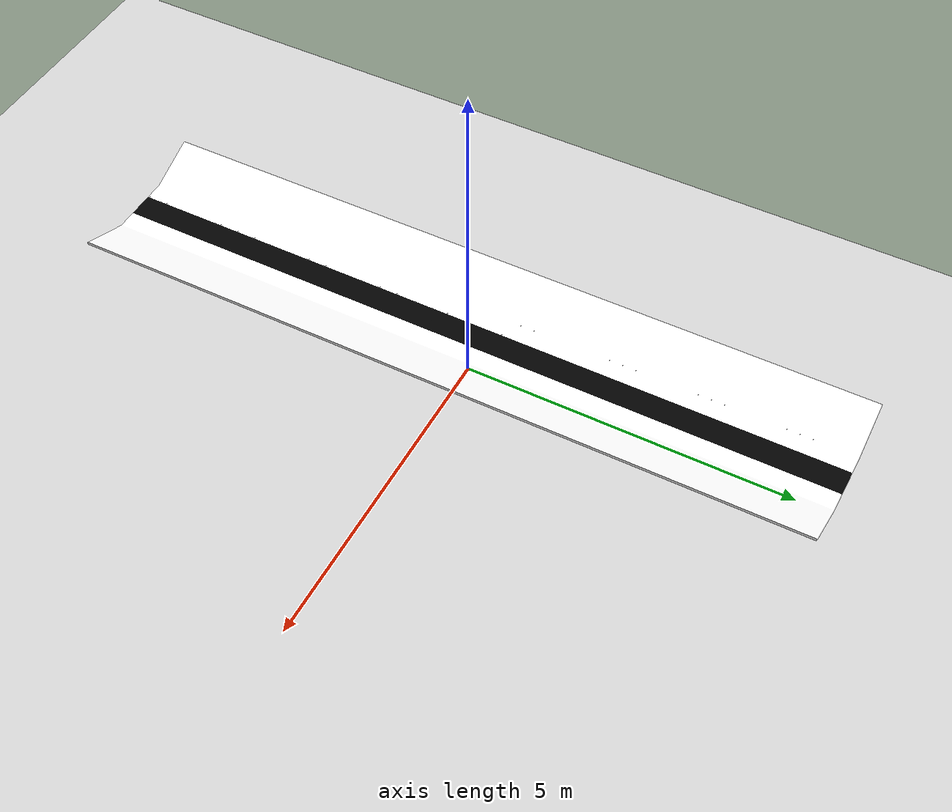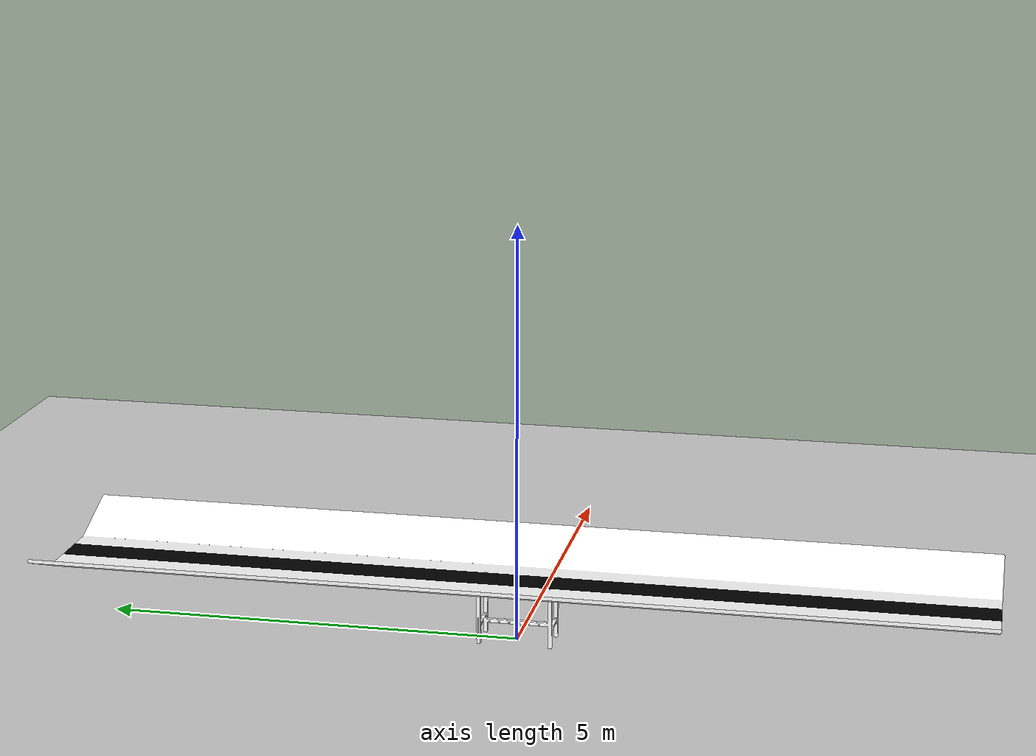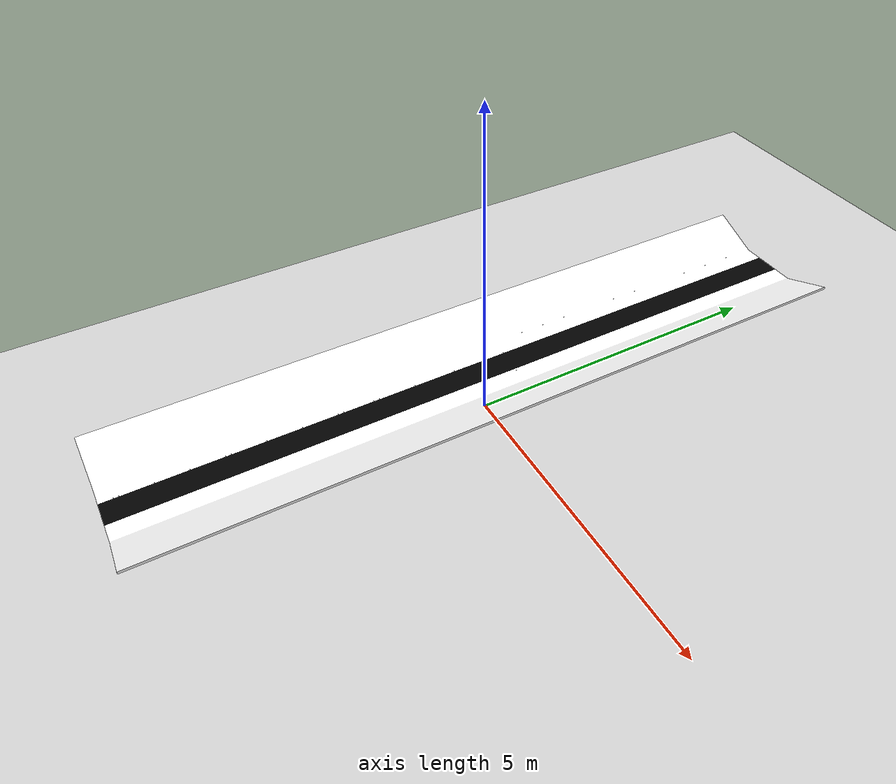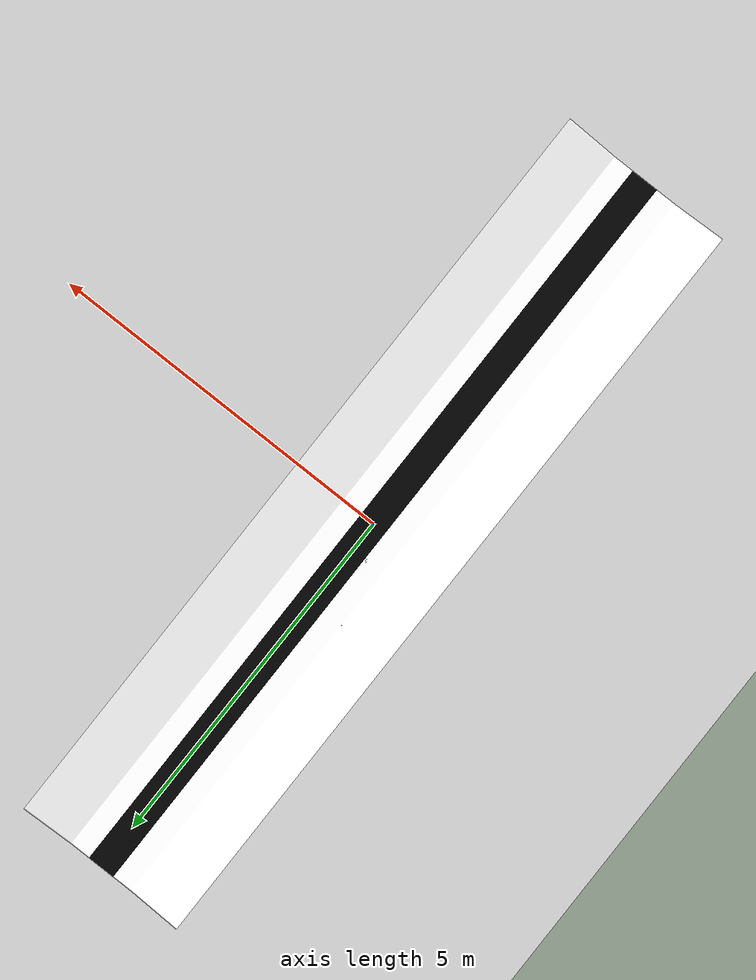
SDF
<sdf version="1.7">
 <world name="default">
  <light name="sun" type="directional">
   <pose>0 0 10 0 -0 0</pose>
   <diffuse>0.8 0.8 0.8 1</diffuse>
   <specular>0.2 0.2 0.2 1</specular>
   <attenuation>
    <range>1000</range>
    <constant>0.9</constant>
    <linear>0.01</linear>
    <quadratic>0.001</quadratic>
   </attenuation>
   <direction>-0.5 0.1 -0.9</direction>
   <spot><inner_angle>0</inner_angle><outer_angle>0</outer_angle><falloff>0</falloff></spot>
  </light>
  <model name="ground_plane">
   <static>1</static>
   <link name="link">
    <collision name="collision">
     <geometry><plane><normal>0 0 1</normal><size>100 100</size></plane></geometry>
     <surface><friction><ode><mu>100</mu><mu2>50</mu2></ode></friction></surface>
    </collision>
    <visual name="visual">
     <cast_shadows>0</cast_shadows>
     <geometry><plane><normal>0 0 1</normal><size>100 100</size></plane></geometry>
     <material>
      <script><uri>file://media/materials/scripts/gazebo.material</uri><name>Gazebo/Grey</name></script>
     </material>
    </visual>
   </link>
  </model>
  <gravity>0 0 -9.8</gravity>
  <magnetic_field>6e-06 2.3e-05 -4.2e-05</magnetic_field>
  <atmosphere type="adiabatic"/>
  <physics type="ode">
   <max_step_size>0.001</max_step_size>
   <real_time_factor>1</real_time_factor>
   <real_time_update_rate>1000</real_time_update_rate>
   <ode>
    <solver><iters>100</iters><sor>1.3</sor></solver>
    <constraints><cfm>0.00004</cfm><erp>0.8</erp></constraints>
   </ode>
  </physics>
  <scene><ambient>0.4 0.4 0.4 1</ambient><background>0.7 0.7 0.7 1</background><shadows>1</shadows></scene>
  <audio><device>default</device></audio>
  <spherical_coordinates>
   <surface_model>EARTH_WGS84</surface_model>
   <latitude_deg>0</latitude_deg>
   <longitude_deg>0</longitude_deg>
   <elevation>0</elevation>
   <heading_deg>0</heading_deg>
  </spherical_coordinates>
  <model name="conveyor_belt">
   <model name="conveyorbelt_fixed">
    <static>1</static>
    <link name="belt_visual">
     <visual name="visual">
      <geometry>
       <mesh><scale>1 1 1</scale><uri>model://new_conveyor_belt/meshes/updated_belt_10m.dae</uri></mesh>
      </geometry>
     </visual>
     <collision name="collision">
      <geometry>
       <mesh><scale>1 1 1</scale><uri>model://new_conveyor_belt/meshes/updated_belt_10m.dae</uri></mesh>
      </geometry>
      <max_contacts>5</max_contacts>
      <origin xyz="0.0 0.0 0" rpy="0.0 0.0 0.0"/>
     </collision>
    </link>
   </model>
   <model name="conveyorbelt_moving">
    <allow_auto_disable>0</allow_auto_disable>
    <static>0</static>
    <pose>0 0 0.03 0 -0 0</pose>
    <link name="belt_moving">
     <inertial>
      <mass>50</mass>
      <inertia><ixx>1</ixx><ixy>0</ixy><ixz>0</ixz><iyy>1</iyy><iyz>0</iyz><izz>1</izz></inertia>
     </inertial>
     <collision name="belt_collision">
      <geometry>
       <mesh><scale>1 1 1</scale><uri>model://new_conveyor_belt/meshes/belt_moving_mesh.dae</uri></mesh>
      </geometry>
      <surface>
       <friction>
        <ode><mu>0.8</mu><mu2>0.8</mu2></ode>
        <torsional><coefficient>1000</coefficient><patch_radius>0.1</patch_radius></torsional>
       </friction>
      </surface>
      <max_contacts>5</max_contacts>
     </collision>
    </link>
   </model>
   <joint name="belt_joint" type="prismatic">
    <parent>conveyorbelt_fixed::belt_visual</parent>
    <child>conveyorbelt_moving::belt_moving</child>
    <axis>
     <xyz expressed_in="__model__">0 1 0</xyz>
     <limit><lower>0</lower><upper>0.01</upper><effort>500</effort><velocity>10</velocity></limit>
     <dynamics>
      <spring_reference>0</spring_reference>
      <spring_stiffness>0</spring_stiffness>
      <damping>5.0</damping>
     </dynamics>
    </axis>
   </joint>
   <plugin name="ros2_conveyorbelt_plugin" filename="libros2_conveyorbelt_plugin.so">
    <ros><namespace>conveyor_belt_1</namespace></ros>
    <max_velocity>10.0</max_velocity>
    <publish_rate>1000</publish_rate>
   </plugin>
  </model>
  <plugin name="gazebo_ros_state" filename="libgazebo_ros_state.so">
   <ros><namespace>/gazebo</namespace></ros>
   <update_rate>1.0</update_rate>
  </plugin>
 </world>
</sdf>
